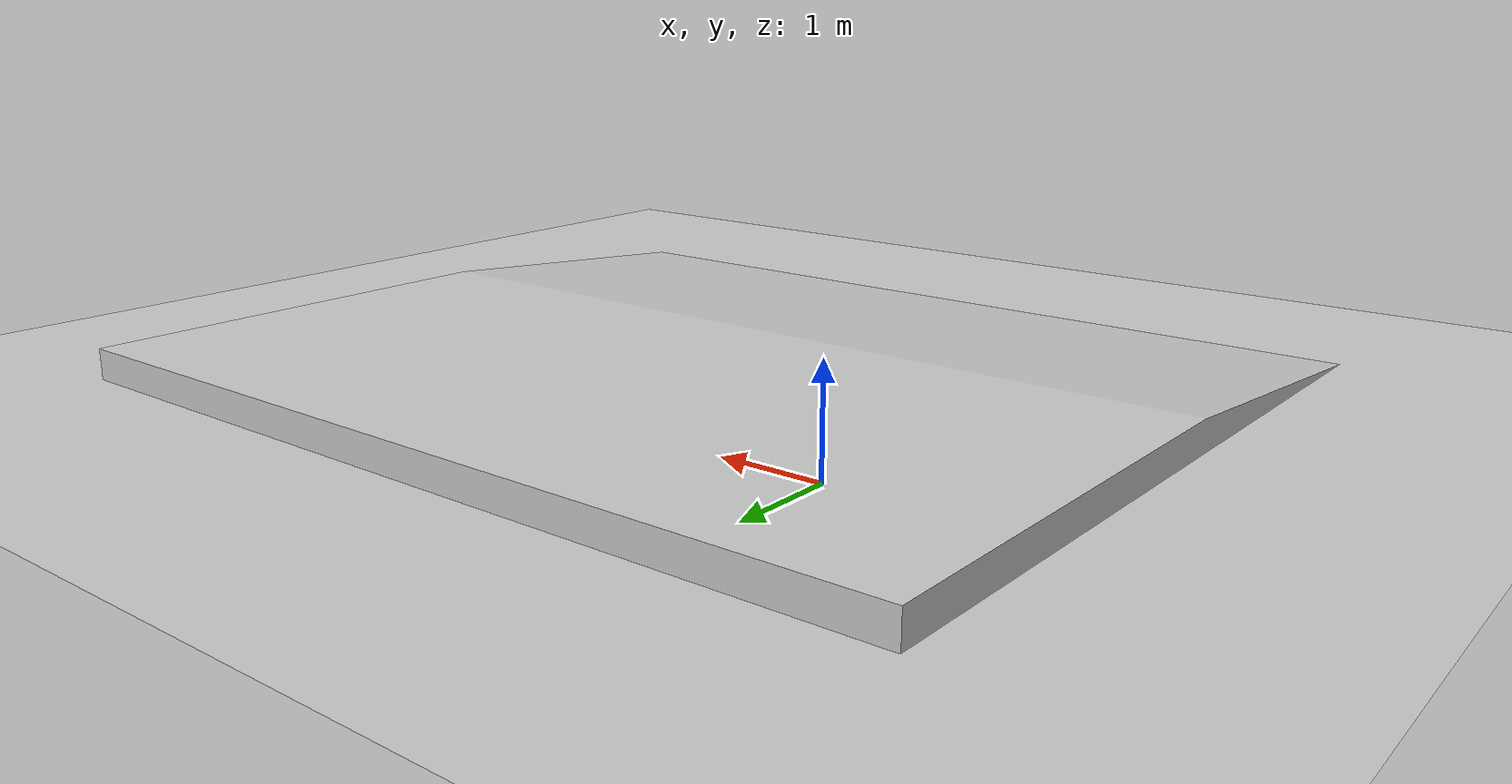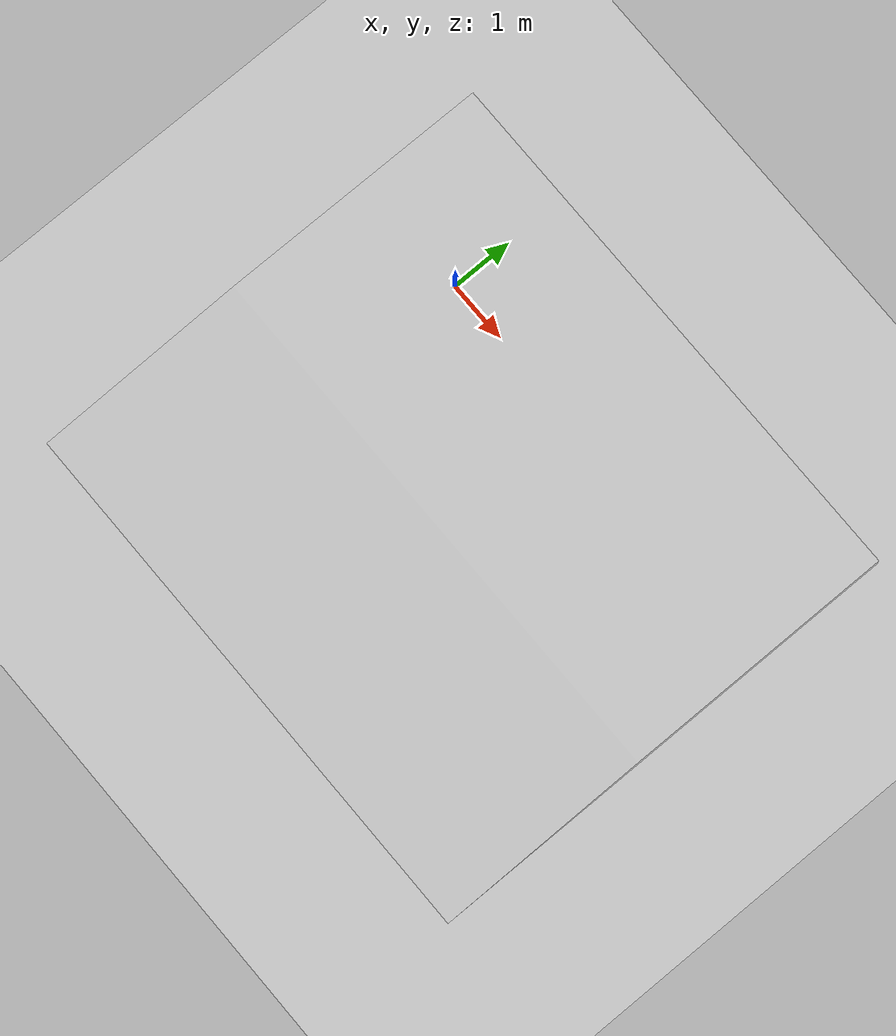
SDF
<?xml version="1.0"?>
<sdf version="1.4">
  <world name="default">
    <include>
      <uri>model://ground_plane</uri>
    </include>
    <include>
      <uri>model://sun</uri>
    </include>
    <include>
      <uri>model://slope_decline</uri>
      <name>slope_5deg_decline</name>
      <pose>-2 -6 0  1.5708 0 1.5708</pose>
    </include>
  </world>
</sdf>

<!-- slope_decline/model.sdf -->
<sdf version='1.6'>
  <model name='slope_5deg_decline'>
  <pose>0 -6 0  1.5708 0 1.5708</pose>
  <static>true</static>
  <link name="body">
  <collision name="collision">
    <geometry>
      <mesh><uri>model://slope_incline/slope_5deg.dae</uri></mesh>
    </geometry>
    <surface>
      <friction>
        <ode>
          <mu>100</mu>
          <mu2>50</mu2>
        </ode>
      </friction>
    </surface>
  </collision>
    <visual name="visual">
      <geometry>
        <mesh><uri>model://slope_incline/slope_5deg.dae</uri></mesh>
      </geometry>
    </visual>
  </link>
  </model>
</sdf>
